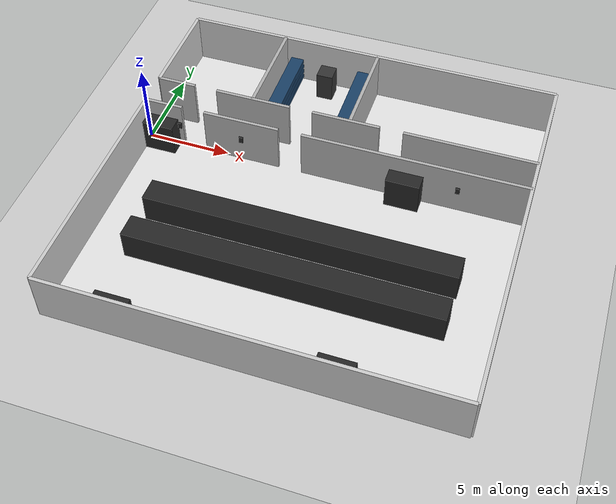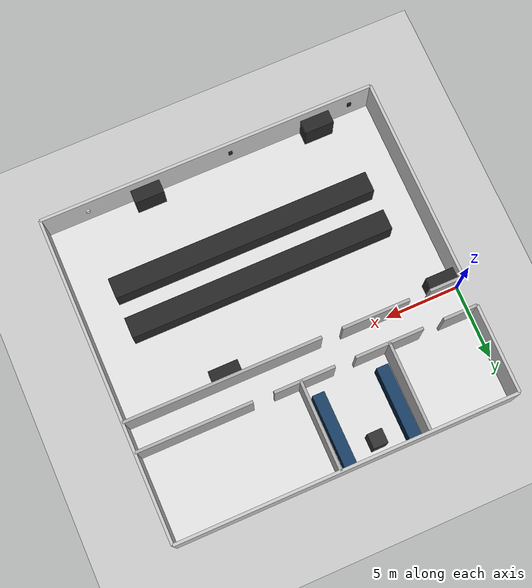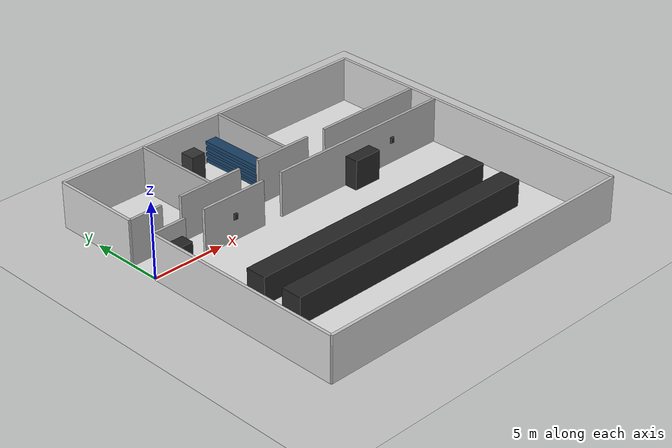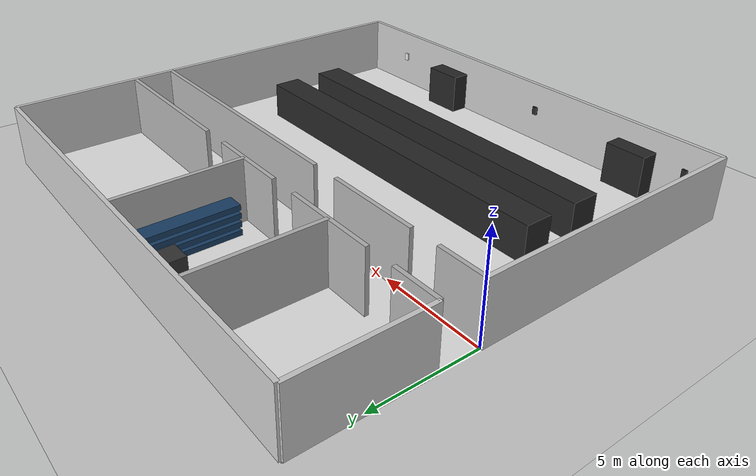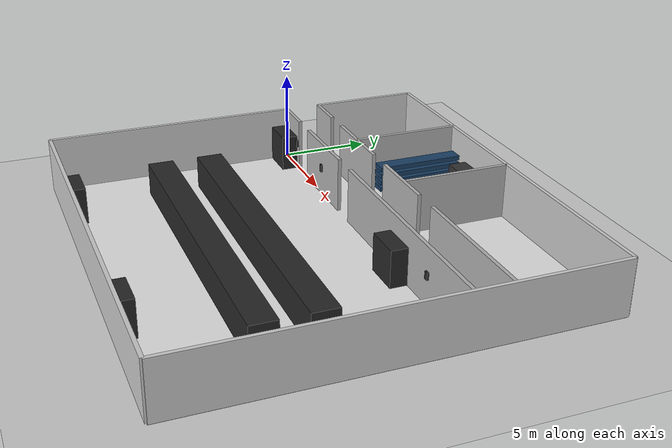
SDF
<sdf version="1.6">
 <world name="datacenter_world">
  <physics type="ode">
   <gravity>0 0 -9.81</gravity>
   <ode>
    <solver><type>quick</type><iters>20</iters><sor>1.0</sor></solver>
    <constraints>
     <cfm>0.0</cfm>
     <erp>0.2</erp>
     <contact_max_correcting_vel>100.0</contact_max_correcting_vel>
     <contact_surface_layer>0.0</contact_surface_layer>
    </constraints>
   </ode>
   <real_time_update_rate>1000</real_time_update_rate>
   <max_step_size>0.001</max_step_size>
  </physics>
  <scene>
   <ambient>0.3 0.3 0.3 1</ambient>
   <background>0.1 0.1 0.1 1</background>
   <shadows>true</shadows>
   <grid>true</grid>
   <origin_visual>true</origin_visual>
  </scene>
  <include><uri>model://ground_plane</uri><pose>0 0 -0.06 0 0 0</pose></include>
  <model name="datacenter_floor">
   <static>true</static>
   <link name="floor_link">
    <pose>11.5 -3 -0.05 0 0 0</pose>
    <collision name="collision"><geometry><box><size>23 22 0.1</size></box></geometry></collision>
    <visual name="visual">
     <geometry><box><size>23 22 0.1</size></box></geometry>
     <material>
      <ambient>0.9 0.9 0.9 1</ambient>
      <diffuse>0.9 0.9 0.9 1</diffuse>
      <specular>0.8 0.8 0.8 1</specular>
      <shininess>50</shininess>
     </material>
    </visual>
   </link>
  </model>
  <include><uri>model://battery_rack</uri><pose>9.0 5.0 0.0 0 0 0</pose></include>
  <light name="led_gang_1" type="point">
   <pose>3.0 1.0 2.75 0 0 0</pose>
   <diffuse>0.9 0.9 1.0 1</diffuse>
   <attenuation><range>8</range><constant>0.5</constant></attenuation>
  </light>
  <light name="led_gang_2" type="point">
   <pose>9.0 1.0 2.75 0 0 0</pose>
   <diffuse>0.9 0.9 1.0 1</diffuse>
   <attenuation><range>8</range><constant>0.5</constant></attenuation>
  </light>
  <light name="led_gang_3" type="point">
   <pose>15.0 1.0 2.75 0 0 0</pose>
   <diffuse>0.9 0.9 1.0 1</diffuse>
   <attenuation><range>8</range><constant>0.5</constant></attenuation>
  </light>
  <light name="led_gang_4" type="point">
   <pose>20.0 1.0 2.75 0 0 0</pose>
   <diffuse>0.9 0.9 1.0 1</diffuse>
   <attenuation><range>8</range><constant>0.5</constant></attenuation>
  </light>
  <light name="led_gen_1" type="point">
   <pose>2.0 5.0 2.75 0 0 0</pose>
   <diffuse>0.9 0.9 0.9 1</diffuse>
   <attenuation><range>10</range><constant>0.4</constant></attenuation>
  </light>
  <light name="led_gen_2" type="point">
   <pose>5.0 5.0 2.75 0 0 0</pose>
   <diffuse>0.9 0.9 0.9 1</diffuse>
   <attenuation><range>10</range><constant>0.4</constant></attenuation>
  </light>
  <light name="led_bat_1" type="point">
   <pose>8.0 5.0 2.75 0 0 0</pose>
   <diffuse>0.9 0.9 0.9 1</diffuse>
   <attenuation><range>10</range><constant>0.4</constant></attenuation>
  </light>
  <light name="led_bat_2" type="point">
   <pose>11.0 5.0 2.75 0 0 0</pose>
   <diffuse>0.9 0.9 0.9 1</diffuse>
   <attenuation><range>10</range><constant>0.4</constant></attenuation>
  </light>
  <light name="led_schakel_1" type="point">
   <pose>14.0 5.0 2.75 0 0 0</pose>
   <diffuse>0.9 0.9 0.9 1</diffuse>
   <attenuation><range>10</range><constant>0.4</constant></attenuation>
  </light>
  <light name="led_schakel_2" type="point">
   <pose>17.0 5.0 2.75 0 0 0</pose>
   <diffuse>0.9 0.9 0.9 1</diffuse>
   <attenuation><range>10</range><constant>0.4</constant></attenuation>
  </light>
  <light name="led_schakel_3" type="point">
   <pose>20.0 5.0 2.75 0 0 0</pose>
   <diffuse>0.9 0.9 0.9 1</diffuse>
   <attenuation><range>10</range><constant>0.4</constant></attenuation>
  </light>
  <light name="led_schakel_4" type="point">
   <pose>22.0 5.0 2.75 0 0 0</pose>
   <diffuse>0.9 0.9 0.9 1</diffuse>
   <attenuation><range>10</range><constant>0.4</constant></attenuation>
  </light>
  <light name="led_data_1" type="point">
   <pose>3.0 -3.0 2.75 0 0 0</pose>
   <diffuse>0.9 0.9 1.0 1</diffuse>
   <attenuation><range>12</range><constant>0.4</constant></attenuation>
  </light>
  <light name="led_data_2" type="point">
   <pose>8.0 -3.0 2.75 0 0 0</pose>
   <diffuse>0.9 0.9 1.0 1</diffuse>
   <attenuation><range>12</range><constant>0.4</constant></attenuation>
  </light>
  <light name="led_data_3" type="point">
   <pose>13.0 -3.0 2.75 0 0 0</pose>
   <diffuse>0.9 0.9 1.0 1</diffuse>
   <attenuation><range>12</range><constant>0.4</constant></attenuation>
  </light>
  <light name="led_data_4" type="point">
   <pose>18.0 -3.0 2.75 0 0 0</pose>
   <diffuse>0.9 0.9 1.0 1</diffuse>
   <attenuation><range>12</range><constant>0.4</constant></attenuation>
  </light>
  <light name="led_data_5" type="point">
   <pose>22.0 -3.0 2.75 0 0 0</pose>
   <diffuse>0.9 0.9 1.0 1</diffuse>
   <attenuation><range>12</range><constant>0.4</constant></attenuation>
  </light>
  <light name="led_data_6" type="point">
   <pose>3.0 -9.0 2.75 0 0 0</pose>
   <diffuse>0.9 0.9 1.0 1</diffuse>
   <attenuation><range>12</range><constant>0.4</constant></attenuation>
  </light>
  <light name="led_data_7" type="point">
   <pose>8.0 -9.0 2.75 0 0 0</pose>
   <diffuse>0.9 0.9 1.0 1</diffuse>
   <attenuation><range>12</range><constant>0.4</constant></attenuation>
  </light>
  <light name="led_data_8" type="point">
   <pose>13.0 -9.0 2.75 0 0 0</pose>
   <diffuse>0.9 0.9 1.0 1</diffuse>
   <attenuation><range>12</range><constant>0.4</constant></attenuation>
  </light>
  <light name="led_data_9" type="point">
   <pose>18.0 -9.0 2.75 0 0 0</pose>
   <diffuse>0.9 0.9 1.0 1</diffuse>
   <attenuation><range>12</range><constant>0.4</constant></attenuation>
  </light>
  <light name="led_data_10" type="point">
   <pose>22.0 -9.0 2.75 0 0 0</pose>
   <diffuse>0.9 0.9 1.0 1</diffuse>
   <attenuation><range>12</range><constant>0.4</constant></attenuation>
  </light>
  <model name="datacenter_fixed_walls">
   <static>true</static>
   <link name="back_wall_tech">
    <pose>11.5 8 1.5 0 0 0</pose>
    <collision name="collision"><geometry><box><size>23 0.2 3</size></box></geometry></collision>
    <visual name="visual">
     <geometry><box><size>23 0.2 3</size></box></geometry>
     <material><ambient>0.8 0.8 0.8 1</ambient></material>
    </visual>
   </link>
   <link name="back_wall_datazaal">
    <pose>11.5 -14 1.5 0 0 0</pose>
    <collision name="collision"><geometry><box><size>23 0.2 3</size></box></geometry></collision>
    <visual name="visual">
     <geometry><box><size>23 0.2 3</size></box></geometry>
     <material><ambient>0.8 0.8 0.8 1</ambient></material>
    </visual>
   </link>
   <link name="left_wall_tech_rooms">
    <pose>0 5 1.5 0 0 0</pose>
    <collision name="collision"><geometry><box><size>0.2 6 3</size></box></geometry></collision>
    <visual name="visual">
     <geometry><box><size>0.2 6 3</size></box></geometry>
     <material><ambient>0.8 0.8 0.8 1</ambient></material>
    </visual>
   </link>
   <link name="left_wall_datazaal">
    <pose>0 -7 1.5 0 0 0</pose>
    <collision name="collision"><geometry><box><size>0.2 14 3</size></box></geometry></collision>
    <visual name="visual">
     <geometry><box><size>0.2 14 3</size></box></geometry>
     <material><ambient>0.8 0.8 0.8 1</ambient></material>
    </visual>
   </link>
   <link name="right_wall_complete">
    <pose>23 -3 1.5 0 0 0</pose>
    <collision name="collision"><geometry><box><size>0.2 22 3</size></box></geometry></collision>
    <visual name="visual">
     <geometry><box><size>0.2 22 3</size></box></geometry>
     <material><ambient>0.8 0.8 0.8 1</ambient></material>
    </visual>
   </link>
   <link name="inner_wall_gen_bat">
    <pose>6 5 1.5 0 0 0</pose>
    <collision name="collision"><geometry><box><size>0.2 6 3</size></box></geometry></collision>
    <visual name="visual">
     <geometry><box><size>0.2 6 3</size></box></geometry>
     <material><ambient>0.7 0.7 0.7 1</ambient></material>
    </visual>
   </link>
   <link name="inner_wall_bat_schakel">
    <pose>12 5 1.5 0 0 0</pose>
    <collision name="collision"><geometry><box><size>0.2 6 3</size></box></geometry></collision>
    <visual name="visual">
     <geometry><box><size>0.2 6 3</size></box></geometry>
     <material><ambient>0.7 0.7 0.7 1</ambient></material>
    </visual>
   </link>
   <link name="hall_wall_top_seg1">
    <pose>1.15 2 1.5 0 0 0</pose>
    <collision name="collision"><geometry><box><size>2.3 0.2 3</size></box></geometry></collision>
    <visual name="visual">
     <geometry><box><size>2.3 0.2 3</size></box></geometry>
     <material><ambient>0.7 0.7 0.7 1</ambient></material>
    </visual>
   </link>
   <link name="hall_wall_top_seg2">
    <pose>6.0 2 1.5 0 0 0</pose>
    <collision name="collision"><geometry><box><size>4.6 0.2 3</size></box></geometry></collision>
    <visual name="visual">
     <geometry><box><size>4.6 0.2 3</size></box></geometry>
     <material><ambient>0.7 0.7 0.7 1</ambient></material>
    </visual>
   </link>
   <link name="hall_wall_top_seg3">
    <pose>11.75 2 1.5 0 0 0</pose>
    <collision name="collision"><geometry><box><size>4.1 0.2 3</size></box></geometry></collision>
    <visual name="visual">
     <geometry><box><size>4.1 0.2 3</size></box></geometry>
     <material><ambient>0.7 0.7 0.7 1</ambient></material>
    </visual>
   </link>
   <link name="hall_wall_top_seg4">
    <pose>19.1 2 1.5 0 0 0</pose>
    <collision name="collision"><geometry><box><size>7.8 0.2 3</size></box></geometry></collision>
    <visual name="visual">
     <geometry><box><size>7.8 0.2 3</size></box></geometry>
     <material><ambient>0.7 0.7 0.7 1</ambient></material>
    </visual>
   </link>
   <link name="hall_wall_bot_seg1">
    <pose>1.15 0 1.5 0 0 0</pose>
    <collision name="collision"><geometry><box><size>2.3 0.2 3</size></box></geometry></collision>
    <visual name="visual">
     <geometry><box><size>2.3 0.2 3</size></box></geometry>
     <material><ambient>0.7 0.7 0.7 1</ambient></material>
    </visual>
   </link>
   <link name="hall_wall_bot_seg2">
    <pose>6.0 0 1.5 0 0 0</pose>
    <collision name="collision"><geometry><box><size>4.6 0.2 3</size></box></geometry></collision>
    <visual name="visual">
     <geometry><box><size>4.6 0.2 3</size></box></geometry>
     <material><ambient>0.7 0.7 0.7 1</ambient></material>
    </visual>
   </link>
   <link name="hall_wall_bot_seg3">
    <pose>16.35 0 1.5 0 0 0</pose>
    <collision name="collision"><geometry><box><size>13.3 0.2 3</size></box></geometry></collision>
    <visual name="visual">
     <geometry><box><size>13.3 0.2 3</size></box></geometry>
     <material><ambient>0.7 0.7 0.7 1</ambient></material>
    </visual>
   </link>
   <link name="server_rack_block_top">
    <pose>11.5 -5.6 0.90 0 0 0</pose>
    <collision name="collision"><geometry><box><size>18 1.4 1.8</size></box></geometry></collision>
    <visual name="visual">
     <geometry><box><size>18 1.4 1.8</size></box></geometry>
     <material>
      <ambient>0.15 0.15 0.15 1</ambient>
      <diffuse>0.15 0.15 0.15 1</diffuse>
      <specular>0.3 0.3 0.3 1</specular>
     </material>
    </visual>
   </link>
   <link name="server_rack_block_bottom">
    <pose>11.5 -8.4 0.90 0 0 0</pose>
    <collision name="collision"><geometry><box><size>18 1.4 1.8</size></box></geometry></collision>
    <visual name="visual">
     <geometry><box><size>18 1.4 1.8</size></box></geometry>
     <material>
      <ambient>0.15 0.15 0.15 1</ambient>
      <diffuse>0.15 0.15 0.15 1</diffuse>
      <specular>0.3 0.3 0.3 1</specular>
     </material>
    </visual>
   </link>
   <link name="ahu_hall_left">
    <pose>1.0 -0.5 1.0 0 0 0</pose>
    <collision name="collision"><geometry><box><size>2 1 2</size></box></geometry></collision>
    <visual name="visual">
     <geometry><box><size>2 1 2</size></box></geometry>
     <material>
      <ambient>0.15 0.15 0.15 1</ambient>
      <diffuse>0.15 0.15 0.15 1</diffuse>
      <specular>0.3 0.3 0.3 1</specular>
     </material>
    </visual>
   </link>
   <link name="ahu_hall_right">
    <pose>16.0 -0.5 1.0 0 0 0</pose>
    <collision name="collision"><geometry><box><size>2 1 2</size></box></geometry></collision>
    <visual name="visual">
     <geometry><box><size>2 1 2</size></box></geometry>
     <material>
      <ambient>0.15 0.15 0.15 1</ambient>
      <diffuse>0.15 0.15 0.15 1</diffuse>
      <specular>0.3 0.3 0.3 1</specular>
     </material>
    </visual>
   </link>
   <link name="ahu_back_left">
    <pose>4.0 -13.5 1.0 0 0 0</pose>
    <collision name="collision"><geometry><box><size>2 1 2</size></box></geometry></collision>
    <visual name="visual">
     <geometry><box><size>2 1 2</size></box></geometry>
     <material>
      <ambient>0.15 0.15 0.15 1</ambient>
      <diffuse>0.15 0.15 0.15 1</diffuse>
      <specular>0.3 0.3 0.3 1</specular>
     </material>
    </visual>
   </link>
   <link name="ahu_back_right">
    <pose>16.0 -13.5 1.0 0 0 0</pose>
    <collision name="collision"><geometry><box><size>2 1 2</size></box></geometry></collision>
    <visual name="visual">
     <geometry><box><size>2 1 2</size></box></geometry>
     <material>
      <ambient>0.15 0.15 0.15 1</ambient>
      <diffuse>0.15 0.15 0.15 1</diffuse>
      <specular>0.3 0.3 0.3 1</specular>
     </material>
    </visual>
   </link>
   <link name="hssd_hall_1">
    <pose>2.1 -0.1 1.60 0 0 0</pose>
    <collision name="collision"><geometry><box><size>0.25 0.2 0.4</size></box></geometry></collision>
    <visual name="visual">
     <geometry><box><size>0.25 0.2 0.4</size></box></geometry>
     <material>
      <ambient>0.15 0.15 0.15 1</ambient>
      <diffuse>0.15 0.15 0.15 1</diffuse>
      <specular>0.3 0.3 0.3 1</specular>
     </material>
    </visual>
   </link>
   <link name="hssd_hall_2">
    <pose>6.0 -0.1 1.60 0 0 0</pose>
    <collision name="collision"><geometry><box><size>0.25 0.2 0.4</size></box></geometry></collision>
    <visual name="visual">
     <geometry><box><size>0.25 0.2 0.4</size></box></geometry>
     <material>
      <ambient>0.15 0.15 0.15 1</ambient>
      <diffuse>0.15 0.15 0.15 1</diffuse>
      <specular>0.3 0.3 0.3 1</specular>
     </material>
    </visual>
   </link>
   <link name="hssd_hall_3">
    <pose>19.0 -0.1 1.60 0 0 0</pose>
    <collision name="collision"><geometry><box><size>0.25 0.2 0.4</size></box></geometry></collision>
    <visual name="visual">
     <geometry><box><size>0.25 0.2 0.4</size></box></geometry>
     <material>
      <ambient>0.15 0.15 0.15 1</ambient>
      <diffuse>0.15 0.15 0.15 1</diffuse>
      <specular>0.3 0.3 0.3 1</specular>
     </material>
    </visual>
   </link>
   <link name="hssd_back_1">
    <pose>1.5 -13.9 1.60 0 0 0</pose>
    <collision name="collision"><geometry><box><size>0.25 0.2 0.4</size></box></geometry></collision>
    <visual name="visual">
     <geometry><box><size>0.25 0.2 0.4</size></box></geometry>
     <material>
      <ambient>0.15 0.15 0.15 1</ambient>
      <diffuse>0.15 0.15 0.15 1</diffuse>
      <specular>0.3 0.3 0.3 1</specular>
     </material>
    </visual>
   </link>
   <link name="hssd_back_2">
    <pose>10.0 -13.9 1.60 0 0 0</pose>
    <collision name="collision"><geometry><box><size>0.25 0.2 0.4</size></box></geometry></collision>
    <visual name="visual">
     <geometry><box><size>0.25 0.2 0.4</size></box></geometry>
     <material>
      <ambient>0.15 0.15 0.15 1</ambient>
      <diffuse>0.15 0.15 0.15 1</diffuse>
      <specular>0.3 0.3 0.3 1</specular>
     </material>
    </visual>
   </link>
   <link name="hssd_back_3">
    <pose>20.0 -13.9 1.60 0 0 0</pose>
    <collision name="collision"><geometry><box><size>0.25 0.2 0.4</size></box></geometry></collision>
    <visual name="visual">
     <geometry><box><size>0.25 0.2 0.4</size></box></geometry>
     <material><ambient>0.9 0.9 0.9 1</ambient></material>
    </visual>
   </link>
  </model>
  <plugin name="gazebo_ros_state" filename="libgazebo_ros_state.so"><update_rate>30.0</update_rate></plugin>
 </world>
</sdf>

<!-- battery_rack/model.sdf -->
<sdf version='1.6'>
  <model name='battery_rack'>
    <static>true</static>

    <link name='switch_box'>
      <pose>0 2 0.90 0 0 1.5775</pose> <collision name='collision'>
        <geometry><box><size>1.0 1.0 1.8</size></box></geometry>
      </collision>
      <visual name='visual'>
        <geometry><box><size>1.0 1.0 1.8</size></box></geometry>
        <material>
          <ambient>0.2 0.2 0.2 1</ambient> <diffuse>0.2 0.2 0.2 1</diffuse>
          <specular>0.4 0.4 0.4 1</specular>
        </material>
      </visual>
    </link>

    <link name='battery_layer_1'>
      <pose>2.2 0.41 0.275 0 0 1.5775</pose> <collision name='collision'>
        <geometry><box><size>4.9 0.82 0.25</size></box></geometry>
      </collision>
      <visual name='visual'>
        <geometry><box><size>4.9 0.82 0.25</size></box></geometry>
        <material>
          <ambient>0.1 0.25 0.4 1</ambient> <diffuse>0.1 0.25 0.4 1</diffuse>
          <specular>0.3 0.3 0.3 1</specular>
        </material>
      </visual>
    </link>

    <link name='battery_layer_2'>
      <pose>2.2 0.41 0.675 0 0 1.5775</pose>
      <collision name='collision'>
        <geometry><box><size>4.9 0.82 0.25</size></box></geometry>
      </collision>
      <visual name='visual'>
        <geometry><box><size>4.9 0.82 0.25</size></box></geometry>
        <material>
          <ambient>0.1 0.25 0.4 1</ambient>
          <diffuse>0.1 0.25 0.4 1</diffuse>
          <specular>0.3 0.3 0.3 1</specular>
        </material>
      </visual>
    </link>

    <link name='battery_layer_3'>
      <pose>2.2 0.41 1.075 0 0 1.5775</pose>
      <collision name='collision'>
        <geometry><box><size>4.9 0.82 0.25</size></box></geometry>
      </collision>
      <visual name='visual'>
        <geometry><box><size>4.9 0.82 0.25</size></box></geometry>
        <material>
          <ambient>0.1 0.25 0.4 1</ambient>
          <diffuse>0.1 0.25 0.4 1</diffuse>
          <specular>0.3 0.3 0.3 1</specular>
        </material>
      </visual>
    </link>

    <link name='battery_layer_4'>
      <pose>2.2 0.41 1.475 0 0 1.5775</pose>
      <collision name='collision'>
        <geometry><box><size>4.9 0.82 0.25</size></box></geometry>
      </collision>
      <visual name='visual'>
        <geometry><box><size>4.9 0.82 0.25</size></box></geometry>
        <material>
          <ambient>0.1 0.25 0.4 1</ambient>
          <diffuse>0.1 0.25 0.4 1</diffuse>
          <specular>0.3 0.3 0.3 1</specular>
        </material>
      </visual>
    </link>

    <link name='battery_layer_5'>
      <pose>-2.2 0.41 0.275 0 0 1.5775</pose> <collision name='collision'>
        <geometry><box><size>4.9 0.82 0.25</size></box></geometry>
      </collision>
      <visual name='visual'>
        <geometry><box><size>4.9 0.82 0.25</size></box></geometry>
        <material>
          <ambient>0.1 0.25 0.4 1</ambient> <diffuse>0.1 0.25 0.4 1</diffuse>
          <specular>0.3 0.3 0.3 1</specular>
        </material>
      </visual>
    </link>

    <link name='battery_layer_6'>
      <pose>-2.2 0.41 0.675 0 0 1.5775</pose>
      <collision name='collision'>
        <geometry><box><size>4.9 0.82 0.25</size></box></geometry>
      </collision>
      <visual name='visual'>
        <geometry><box><size>4.9 0.82 0.25</size></box></geometry>
        <material>
          <ambient>0.1 0.25 0.4 1</ambient>
          <diffuse>0.1 0.25 0.4 1</diffuse>
          <specular>0.3 0.3 0.3 1</specular>
        </material>
      </visual>
    </link>

    <link name='battery_layer_7'>
      <pose>-2.2 0.41 1.075 0 0 1.5775</pose>
      <collision name='collision'>
        <geometry><box><size>4.9 0.82 0.25</size></box></geometry>
      </collision>
      <visual name='visual'>
        <geometry><box><size>4.9 0.82 0.25</size></box></geometry>
        <material>
          <ambient>0.1 0.25 0.4 1</ambient>
          <diffuse>0.1 0.25 0.4 1</diffuse>
          <specular>0.3 0.3 0.3 1</specular>
        </material>
      </visual>
    </link>

    <link name='battery_layer_8'>
      <pose>-2.2 0.41 1.475 0 0 1.5775</pose>
      <collision name='collision'>
        <geometry><box><size>4.9 0.82 0.25</size></box></geometry>
      </collision>
      <visual name='visual'>
        <geometry><box><size>4.9 0.82 0.25</size></box></geometry>
        <material>
          <ambient>0.1 0.25 0.4 1</ambient>
          <diffuse>0.1 0.25 0.4 1</diffuse>
          <specular>0.3 0.3 0.3 1</specular>
        </material>
      </visual>
    </link>
  </model>
</sdf>
